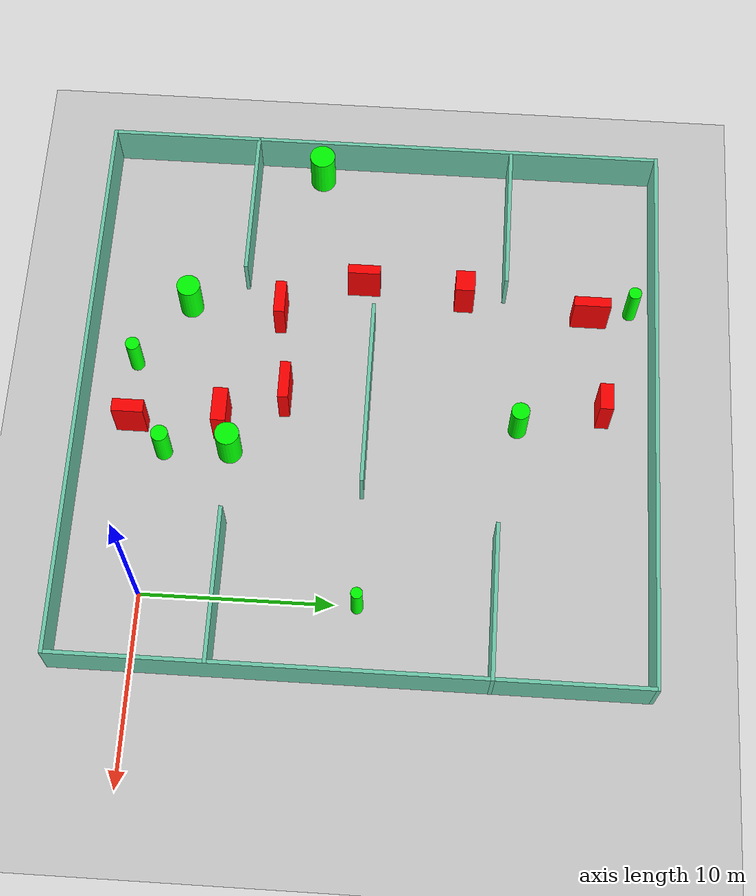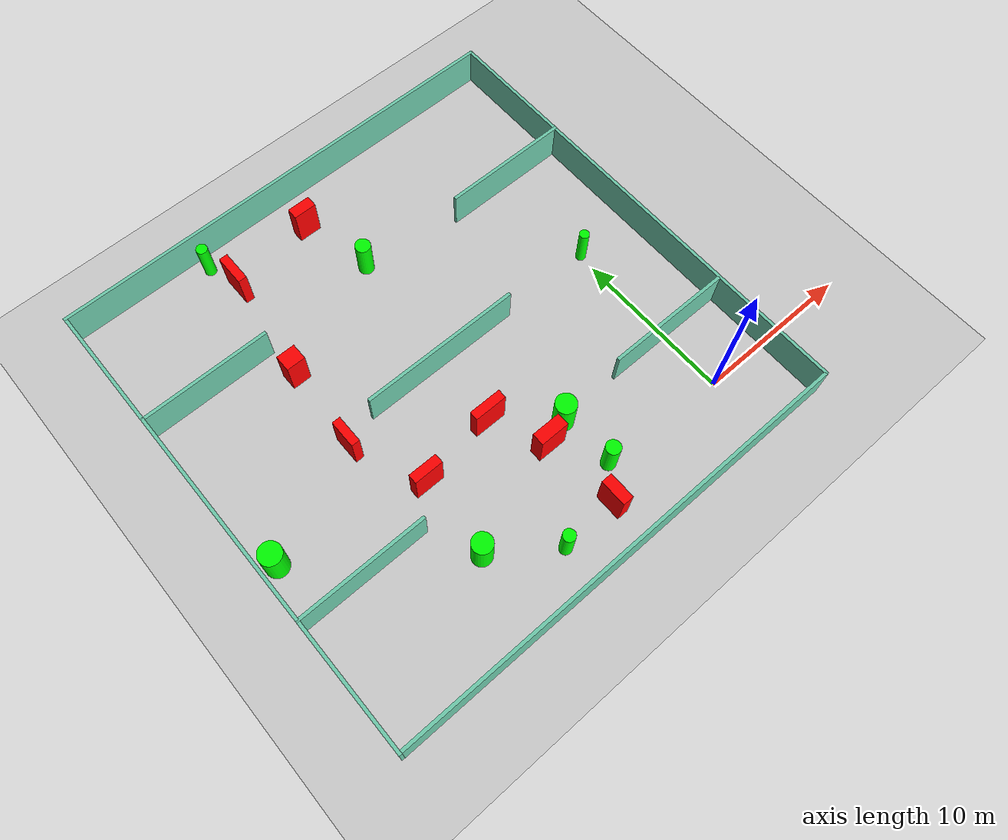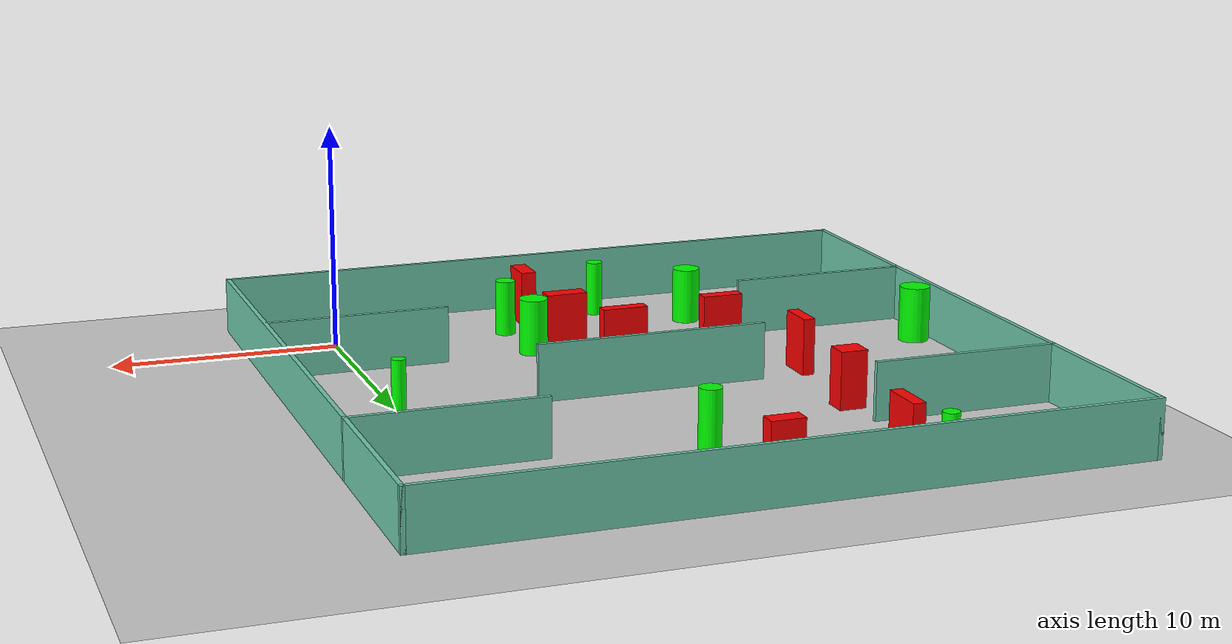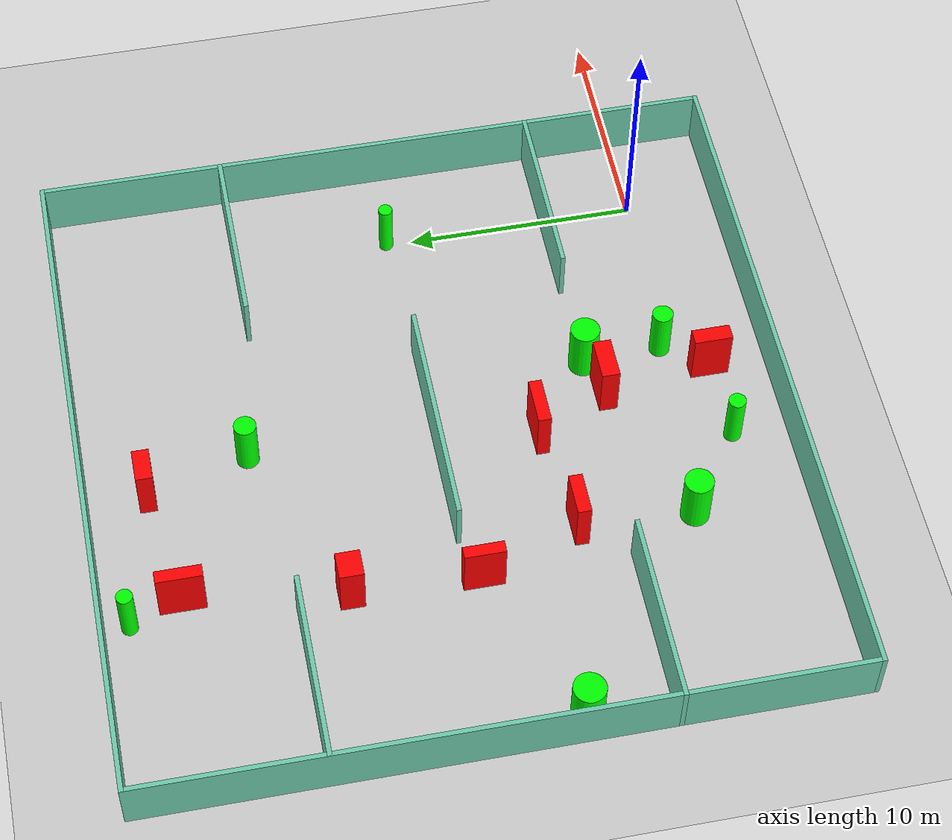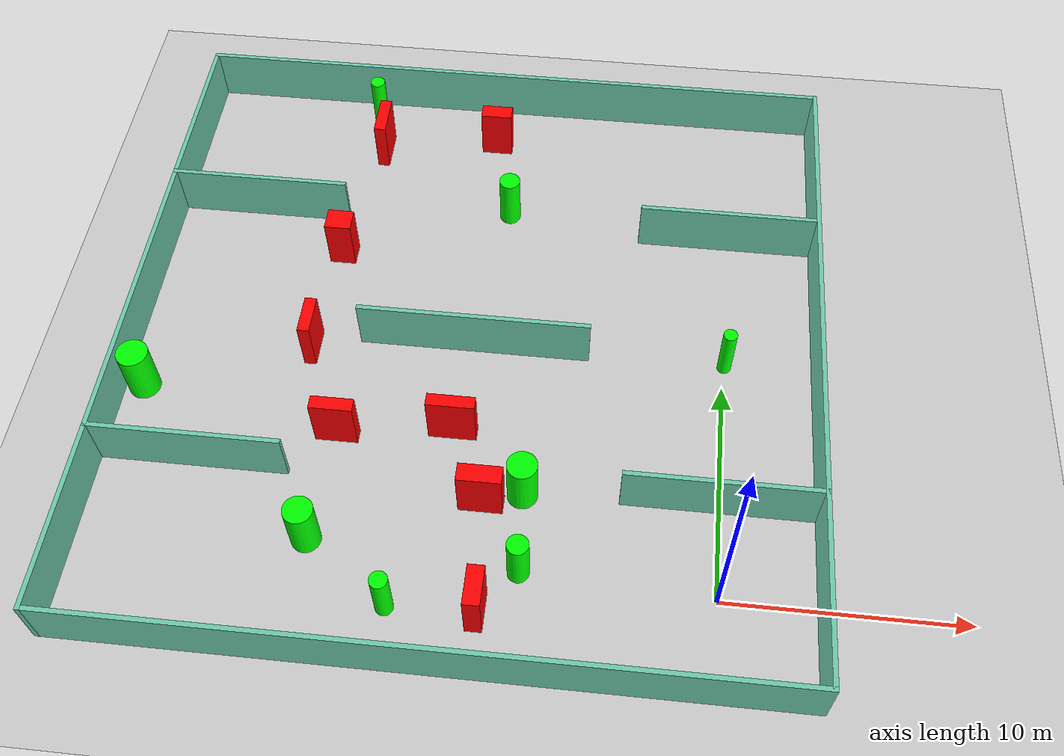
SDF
<sdf version="1.7">
 <world name="default">
  <light name="sun" type="directional">
   <pose>0 0 10 0 -0 0</pose>
   <diffuse>0.8 0.8 0.8 1</diffuse>
   <specular>0.2 0.2 0.2 1</specular>
   <attenuation>
    <range>1000</range>
    <constant>0.9</constant>
    <linear>0.01</linear>
    <quadratic>0.001</quadratic>
   </attenuation>
   <direction>-0.5 0.1 -0.9</direction>
   <spot><inner_angle>0</inner_angle><outer_angle>0</outer_angle><falloff>0</falloff></spot>
  </light>
  <model name="ground_plane">
   <static>1</static>
   <link name="link">
    <collision name="collision">
     <geometry><plane><normal>0 0 1</normal><size>100 100</size></plane></geometry>
     <surface>
      <contact><collide_bitmask>65535</collide_bitmask></contact>
      <friction><ode><mu>100</mu><mu2>50</mu2></ode></friction>
     </surface>
    </collision>
    <visual name="visual">
     <cast_shadows>0</cast_shadows>
     <geometry><plane><normal>0 0 1</normal><size>100 100</size></plane></geometry>
     <material>
      <script><uri>file://media/materials/scripts/gazebo.material</uri><name>Gazebo/Grey</name></script>
     </material>
    </visual>
   </link>
  </model>
  <gravity>0 0 -9.8</gravity>
  <magnetic_field>6e-06 2.3e-05 -4.2e-05</magnetic_field>
  <atmosphere type="adiabatic"/>
  <physics type="ode">
   <max_step_size>0.001</max_step_size>
   <real_time_factor>1</real_time_factor>
   <real_time_update_rate>1000</real_time_update_rate>
  </physics>
  <scene><ambient>0.4 0.4 0.4 1</ambient><background>0.7 0.7 0.7 1</background><shadows>1</shadows></scene>
  <spherical_coordinates>
   <surface_model>EARTH_WGS84</surface_model>
   <latitude_deg>0</latitude_deg>
   <longitude_deg>0</longitude_deg>
   <elevation>0</elevation>
   <heading_deg>0</heading_deg>
  </spherical_coordinates>
  <model name="my_base_walls">
   <link name="Wall_10">
    <collision name="Wall_10_Collision">
     <geometry><box><size>8.2 0.2 2.5</size></box></geometry>
     <pose>0 0 1.25 0 -0 0</pose>
    </collision>
    <visual name="Wall_10_Visual">
     <pose>0 0 1.25 0 -0 0</pose>
     <geometry><box><size>8.2 0.2 2.5</size></box></geometry>
     <material>
      <script><uri>file://media/materials/scripts/gazebo.material</uri><name>Gazebo/Grey</name></script>
      <ambient>0.435294 0.796078 0.67451 1</ambient>
     </material>
     <meta><layer>0</layer></meta>
    </visual>
    <pose>-11 -7 0 0 -0 0</pose>
   </link>
   <link name="Wall_12">
    <collision name="Wall_12_Collision">
     <geometry><box><size>8.2 0.2 2.5</size></box></geometry>
     <pose>0 0 1.25 0 -0 0</pose>
    </collision>
    <visual name="Wall_12_Visual">
     <pose>0 0 1.25 0 -0 0</pose>
     <geometry><box><size>8.2 0.2 2.5</size></box></geometry>
     <material>
      <script><uri>file://media/materials/scripts/gazebo.material</uri><name>Gazebo/Grey</name></script>
      <ambient>0.435294 0.796078 0.67451 1</ambient>
     </material>
     <meta><layer>0</layer></meta>
    </visual>
    <pose>-11 7 0 0 -0 0</pose>
   </link>
   <link name="Wall_14">
    <collision name="Wall_14_Collision">
     <geometry><box><size>8.2 0.2 2.5</size></box></geometry>
     <pose>0 0 1.25 0 -0 0</pose>
    </collision>
    <visual name="Wall_14_Visual">
     <pose>0 0 1.25 0 -0 0</pose>
     <geometry><box><size>8.2 0.2 2.5</size></box></geometry>
     <material>
      <script><uri>file://media/materials/scripts/gazebo.material</uri><name>Gazebo/Grey</name></script>
      <ambient>0.435294 0.796078 0.67451 1</ambient>
     </material>
     <meta><layer>0</layer></meta>
    </visual>
    <pose>11 7 0 0 -0 3.14159</pose>
   </link>
   <link name="Wall_16">
    <collision name="Wall_16_Collision">
     <geometry><box><size>10.2 0.2 2.5</size></box></geometry>
     <pose>0 0 1.25 0 -0 0</pose>
    </collision>
    <visual name="Wall_16_Visual">
     <pose>0 0 1.25 0 -0 0</pose>
     <geometry><box><size>10.2 0.2 2.5</size></box></geometry>
     <material>
      <script><uri>file://media/materials/scripts/gazebo.material</uri><name>Gazebo/Grey</name></script>
      <ambient>0.435294 0.796078 0.67451 1</ambient>
     </material>
     <meta><layer>0</layer></meta>
    </visual>
    <pose>0 0 0 0 -0 3.14159</pose>
   </link>
   <link name="Wall_2">
    <collision name="Wall_2_Collision">
     <geometry><box><size>30.2 0.2 2.5</size></box></geometry>
     <pose>0 0 1.25 0 -0 0</pose>
    </collision>
    <visual name="Wall_2_Visual">
     <pose>0 0 1.25 0 -0 0</pose>
     <geometry><box><size>30.2 0.2 2.5</size></box></geometry>
     <material>
      <script><uri>file://media/materials/scripts/gazebo.material</uri><name>Gazebo/Grey</name></script>
      <ambient>0.435294 0.796078 0.67451 1</ambient>
     </material>
     <meta><layer>0</layer></meta>
    </visual>
    <pose>0 -15 0 0 -0 3.14159</pose>
   </link>
   <link name="Wall_3">
    <collision name="Wall_3_Collision">
     <geometry><box><size>30.2 0.2 2.5</size></box></geometry>
     <pose>0 0 1.25 0 -0 0</pose>
    </collision>
    <visual name="Wall_3_Visual">
     <pose>0 0 1.25 0 -0 0</pose>
     <geometry><box><size>30.2 0.2 2.5</size></box></geometry>
     <material>
      <script><uri>file://media/materials/scripts/gazebo.material</uri><name>Gazebo/Grey</name></script>
      <ambient>0.435294 0.796078 0.67451 1</ambient>
     </material>
     <meta><layer>0</layer></meta>
    </visual>
    <pose>-15 0 0 0 -0 1.5708</pose>
   </link>
   <link name="Wall_4">
    <collision name="Wall_4_Collision">
     <geometry><box><size>30.2 0.2 2.5</size></box></geometry>
     <pose>0 0 1.25 0 -0 0</pose>
    </collision>
    <visual name="Wall_4_Visual">
     <pose>0 0 1.25 0 -0 0</pose>
     <geometry><box><size>30.2 0.2 2.5</size></box></geometry>
     <material>
      <script><uri>file://media/materials/scripts/gazebo.material</uri><name>Gazebo/Grey</name></script>
      <ambient>0.435294 0.796078 0.67451 1</ambient>
     </material>
     <meta><layer>0</layer></meta>
    </visual>
    <pose>0 15 0 0 -0 0</pose>
   </link>
   <link name="Wall_6">
    <collision name="Wall_6_Collision">
     <geometry><box><size>30.2 0.2 2.5</size></box></geometry>
     <pose>0 0 1.25 0 -0 0</pose>
    </collision>
    <visual name="Wall_6_Visual">
     <pose>0 0 1.25 0 -0 0</pose>
     <geometry><box><size>30.2 0.2 2.5</size></box></geometry>
     <material>
      <script><uri>file://media/materials/scripts/gazebo.material</uri><name>Gazebo/Grey</name></script>
      <ambient>0.435294 0.796078 0.67451 1</ambient>
     </material>
     <meta><layer>0</layer></meta>
    </visual>
    <pose>15 0 0 0 -0 1.5708</pose>
   </link>
   <link name="Wall_8">
    <collision name="Wall_8_Collision">
     <geometry><box><size>8.2 0.2 2.5</size></box></geometry>
     <pose>0 0 1.25 0 -0 0</pose>
    </collision>
    <visual name="Wall_8_Visual">
     <pose>0 0 1.25 0 -0 0</pose>
     <geometry><box><size>8.2 0.2 2.5</size></box></geometry>
     <material>
      <script><uri>file://media/materials/scripts/gazebo.material</uri><name>Gazebo/Grey</name></script>
      <ambient>0.435294 0.796078 0.67451 1</ambient>
     </material>
     <meta><layer>0</layer></meta>
    </visual>
    <pose>11 -7 0 0 -0 3.14159</pose>
   </link>
   <static>1</static>
   <pose>-11 11 0 0 -0 0</pose>
  </model>
  <model name="cylinder1">
   <static>1</static>
   <link name="link">
    <inertial>
     <mass>1</mass>
     <inertia><ixx>0.5</ixx><ixy>0</ixy><ixz>0</ixz><iyy>0.5</iyy><iyz>0</iyz><izz>1</izz></inertia>
    </inertial>
    <collision name="collision">
     <geometry><cylinder><radius>0.4793642138937728</radius><length>2.5</length></cylinder></geometry>
    </collision>
    <visual name="visual">
     <geometry><cylinder><radius>0.4793642138937728</radius><length>2.5</length></cylinder></geometry>
     <material>
      <ambient>0 1 0 1</ambient>
      <diffuse>0 1 0 1</diffuse>
      <specular>0.1 0.1 0.1 1</specular>
      <emissive>0 0 0 0</emissive>
     </material>
    </visual>
   </link>
   <pose>-10.302719754822217 18.967758580508328 1.25 0 0 0</pose>
  </model>
  <model name="cylinder2">
   <static>1</static>
   <link name="link">
    <inertial>
     <mass>1</mass>
     <inertia><ixx>0.5</ixx><ixy>0</ixy><ixz>0</ixz><iyy>0.5</iyy><iyz>0</iyz><izz>1</izz></inertia>
    </inertial>
    <collision name="collision">
     <geometry><cylinder><radius>0.30484520756621214</radius><length>2.5</length></cylinder></geometry>
    </collision>
    <visual name="visual">
     <geometry><cylinder><radius>0.30484520756621214</radius><length>2.5</length></cylinder></geometry>
     <material>
      <ambient>0 1 0 1</ambient>
      <diffuse>0 1 0 1</diffuse>
      <specular>0.1 0.1 0.1 1</specular>
      <emissive>0 0 0 0</emissive>
     </material>
    </visual>
   </link>
   <pose>0.07474295140703191 11.147130117623398 1.25 0 0 0</pose>
  </model>
  <model name="cylinder3">
   <static>1</static>
   <link name="link">
    <inertial>
     <mass>1</mass>
     <inertia><ixx>0.5</ixx><ixy>0</ixy><ixz>0</ixz><iyy>0.5</iyy><iyz>0</iyz><izz>1</izz></inertia>
    </inertial>
    <collision name="collision">
     <geometry><cylinder><radius>0.3475603524035377</radius><length>2.5</length></cylinder></geometry>
    </collision>
    <visual name="visual">
     <geometry><cylinder><radius>0.3475603524035377</radius><length>2.5</length></cylinder></geometry>
     <material>
      <ambient>0 1 0 1</ambient>
      <diffuse>0 1 0 1</diffuse>
      <specular>0.1 0.1 0.1 1</specular>
      <emissive>0 0 0 0</emissive>
     </material>
    </visual>
   </link>
   <pose>-17.583584768123174 24.872918279352163 1.25 0 0 0</pose>
  </model>
  <model name="cylinder4">
   <static>1</static>
   <link name="link">
    <inertial>
     <mass>1</mass>
     <inertia><ixx>0.5</ixx><ixy>0</ixy><ixz>0</ixz><iyy>0.5</iyy><iyz>0</iyz><izz>1</izz></inertia>
    </inertial>
    <collision name="collision">
     <geometry><cylinder><radius>0.6189385274278122</radius><length>2.5</length></cylinder></geometry>
    </collision>
    <visual name="visual">
     <geometry><cylinder><radius>0.6189385274278122</radius><length>2.5</length></cylinder></geometry>
     <material>
      <ambient>0 1 0 1</ambient>
      <diffuse>0 1 0 1</diffuse>
      <specular>0.1 0.1 0.1 1</specular>
      <emissive>0 0 0 0</emissive>
     </material>
    </visual>
   </link>
   <pose>-16.55092779442358 1.035174697467756 1.25 0 0 0</pose>
  </model>
  <model name="cylinder5">
   <static>1</static>
   <link name="link">
    <inertial>
     <mass>1</mass>
     <inertia><ixx>0.5</ixx><ixy>0</ixy><ixz>0</ixz><iyy>0.5</iyy><iyz>0</iyz><izz>1</izz></inertia>
    </inertial>
    <collision name="collision">
     <geometry><cylinder><radius>0.44873501811509264</radius><length>2.5</length></cylinder></geometry>
    </collision>
    <visual name="visual">
     <geometry><cylinder><radius>0.44873501811509264</radius><length>2.5</length></cylinder></geometry>
     <material>
      <ambient>0 1 0 1</ambient>
      <diffuse>0 1 0 1</diffuse>
      <specular>0.1 0.1 0.1 1</specular>
      <emissive>0 0 0 0</emissive>
     </material>
    </visual>
   </link>
   <pose>-7.882805156413655 0.44525192616140874 1.25 0 0 0</pose>
  </model>
  <model name="cylinder6">
   <static>1</static>
   <link name="link">
    <inertial>
     <mass>1</mass>
     <inertia><ixx>0.5</ixx><ixy>0</ixy><ixz>0</ixz><iyy>0.5</iyy><iyz>0</iyz><izz>1</izz></inertia>
    </inertial>
    <collision name="collision">
     <geometry><cylinder><radius>0.6838596003229882</radius><length>2.5</length></cylinder></geometry>
    </collision>
    <visual name="visual">
     <geometry><cylinder><radius>0.6838596003229882</radius><length>2.5</length></cylinder></geometry>
     <material>
      <ambient>0 1 0 1</ambient>
      <diffuse>0 1 0 1</diffuse>
      <specular>0.1 0.1 0.1 1</specular>
      <emissive>0 0 0 0</emissive>
     </material>
    </visual>
   </link>
   <pose>-25.074883487044442 7.602264228507591 1.25 0 0 0</pose>
  </model>
  <model name="cylinder7">
   <static>1</static>
   <link name="link">
    <inertial>
     <mass>1</mass>
     <inertia><ixx>0.5</ixx><ixy>0</ixy><ixz>0</ixz><iyy>0.5</iyy><iyz>0</iyz><izz>1</izz></inertia>
    </inertial>
    <collision name="collision">
     <geometry><cylinder><radius>0.6387787407698373</radius><length>2.5</length></cylinder></geometry>
    </collision>
    <visual name="visual">
     <geometry><cylinder><radius>0.6387787407698373</radius><length>2.5</length></cylinder></geometry>
     <material>
      <ambient>0 1 0 1</ambient>
      <diffuse>0 1 0 1</diffuse>
      <specular>0.1 0.1 0.1 1</specular>
      <emissive>0 0 0 0</emissive>
     </material>
    </visual>
   </link>
   <pose>-8.086730606330178 3.912345864319011 1.25 0 0 0</pose>
  </model>
  <model name="cylinder8">
   <static>1</static>
   <link name="link">
    <inertial>
     <mass>1</mass>
     <inertia><ixx>0.5</ixx><ixy>0</ixy><ixz>0</ixz><iyy>0.5</iyy><iyz>0</iyz><izz>1</izz></inertia>
    </inertial>
    <collision name="collision">
     <geometry><cylinder><radius>0.37384447572340374</radius><length>2.5</length></cylinder></geometry>
    </collision>
    <visual name="visual">
     <geometry><cylinder><radius>0.37384447572340374</radius><length>2.5</length></cylinder></geometry>
     <material>
      <ambient>0 1 0 1</ambient>
      <diffuse>0 1 0 1</diffuse>
      <specular>0.1 0.1 0.1 1</specular>
      <emissive>0 0 0 0</emissive>
     </material>
    </visual>
   </link>
   <pose>-12.922586536852902 -1.5351569952623767 1.25 0 0 0</pose>
  </model>
  <model name="box1">
   <static>1</static>
   <link name="link">
    <inertial>
     <mass>1</mass>
     <inertia><ixx>0.083</ixx><ixy>0</ixy><ixz>0</ixz><iyy>0.083</iyy><iyz>0</iyz><izz>0.083</izz></inertia>
    </inertial>
    <collision name="collision">
     <geometry><box><size>0.6921415192883948 1.6582643054349588 2.5</size></box></geometry>
    </collision>
    <visual name="visual">
     <geometry><box><size>0.6921415192883948 1.6582643054349588 2.5</size></box></geometry>
     <material>
      <ambient>1 0 0 1</ambient>
      <diffuse>1 0 0 1</diffuse>
      <specular>0.1 0.1 0.1 1</specular>
      <emissive>0 0 0 0</emissive>
     </material>
    </visual>
    <sensor name="my_contact" type="contact">
     <contact><collision>box_collision</collision><topic>__default_topic__</topic></contact>
    </sensor>
   </link>
   <pose>-9.347071740283894 -1.365352158870952 1.25 0 0 0</pose>
  </model>
  <model name="box2">
   <static>1</static>
   <link name="link">
    <inertial>
     <mass>1</mass>
     <inertia><ixx>0.083</ixx><ixy>0</ixy><ixz>0</ixz><iyy>0.083</iyy><iyz>0</iyz><izz>0.083</izz></inertia>
    </inertial>
    <collision name="collision">
     <geometry><box><size>1.8457633564144769 0.7779499684961939 2.5</size></box></geometry>
    </collision>
    <visual name="visual">
     <geometry><box><size>1.8457633564144769 0.7779499684961939 2.5</size></box></geometry>
     <material>
      <ambient>1 0 0 1</ambient>
      <diffuse>1 0 0 1</diffuse>
      <specular>0.1 0.1 0.1 1</specular>
      <emissive>0 0 0 0</emissive>
     </material>
    </visual>
    <sensor name="my_contact" type="contact">
     <contact><collision>box_collision</collision><topic>__default_topic__</topic></contact>
    </sensor>
   </link>
   <pose>-9.732831648376724 3.366554121484583 1.25 0 0 0</pose>
  </model>
  <model name="box3">
   <static>1</static>
   <link name="link">
    <inertial>
     <mass>1</mass>
     <inertia><ixx>0.083</ixx><ixy>0</ixy><ixz>0</ixz><iyy>0.083</iyy><iyz>0</iyz><izz>0.083</izz></inertia>
    </inertial>
    <collision name="collision">
     <geometry><box><size>1.4524534602550454 0.7238951091567676 2.5</size></box></geometry>
    </collision>
    <visual name="visual">
     <geometry><box><size>1.4524534602550454 0.7238951091567676 2.5</size></box></geometry>
     <material>
      <ambient>1 0 0 1</ambient>
      <diffuse>1 0 0 1</diffuse>
      <specular>0.1 0.1 0.1 1</specular>
      <emissive>0 0 0 0</emissive>
     </material>
    </visual>
    <sensor name="my_contact" type="contact">
     <contact><collision>box_collision</collision><topic>__default_topic__</topic></contact>
    </sensor>
   </link>
   <pose>-11.43305638729274 23.41622092064825 1.25 0 0 0</pose>
  </model>
  <model name="box4">
   <static>1</static>
   <link name="link">
    <inertial>
     <mass>1</mass>
     <inertia><ixx>0.083</ixx><ixy>0</ixy><ixz>0</ixz><iyy>0.083</iyy><iyz>0</iyz><izz>0.083</izz></inertia>
    </inertial>
    <collision name="collision">
     <geometry><box><size>2.052367714447071 0.56091479213733 2.5</size></box></geometry>
    </collision>
    <visual name="visual">
     <geometry><box><size>2.052367714447071 0.56091479213733 2.5</size></box></geometry>
     <material>
      <ambient>1 0 0 1</ambient>
      <diffuse>1 0 0 1</diffuse>
      <specular>0.1 0.1 0.1 1</specular>
      <emissive>0 0 0 0</emissive>
     </material>
    </visual>
    <sensor name="my_contact" type="contact">
     <contact><collision>box_collision</collision><topic>__default_topic__</topic></contact>
    </sensor>
   </link>
   <pose>-11.350051618458455 6.606869950468926 1.25 0 0 0</pose>
  </model>
  <model name="box5">
   <static>1</static>
   <link name="link">
    <inertial>
     <mass>1</mass>
     <inertia><ixx>0.083</ixx><ixy>0</ixy><ixz>0</ixz><iyy>0.083</iyy><iyz>0</iyz><izz>0.083</izz></inertia>
    </inertial>
    <collision name="collision">
     <geometry><box><size>0.522256006603128 1.7463956198463362 2.5</size></box></geometry>
    </collision>
    <visual name="visual">
     <geometry><box><size>0.522256006603128 1.7463956198463362 2.5</size></box></geometry>
     <material>
      <ambient>1 0 0 1</ambient>
      <diffuse>1 0 0 1</diffuse>
      <specular>0.1 0.1 0.1 1</specular>
      <emissive>0 0 0 0</emissive>
     </material>
    </visual>
    <sensor name="my_contact" type="contact">
     <contact><collision>box_collision</collision><topic>__default_topic__</topic></contact>
    </sensor>
   </link>
   <pose>-18.131356791322574 10.36406768180849 1.25 0 0 0</pose>
  </model>
  <model name="box6">
   <static>1</static>
   <link name="link">
    <inertial>
     <mass>1</mass>
     <inertia><ixx>0.083</ixx><ixy>0</ixy><ixz>0</ixz><iyy>0.083</iyy><iyz>0</iyz><izz>0.083</izz></inertia>
    </inertial>
    <collision name="collision">
     <geometry><box><size>1.1803029977349289 1.032267851965082 2.5</size></box></geometry>
    </collision>
    <visual name="visual">
     <geometry><box><size>1.1803029977349289 1.032267851965082 2.5</size></box></geometry>
     <material>
      <ambient>1 0 0 1</ambient>
      <diffuse>1 0 0 1</diffuse>
      <specular>0.1 0.1 0.1 1</specular>
      <emissive>0 0 0 0</emissive>
     </material>
    </visual>
    <sensor name="my_contact" type="contact">
     <contact><collision>box_collision</collision><topic>__default_topic__</topic></contact>
    </sensor>
   </link>
   <pose>-17.77861731720411 15.821197862595696 1.25 0 0 0</pose>
  </model>
  <model name="box7">
   <static>1</static>
   <link name="link">
    <inertial>
     <mass>1</mass>
     <inertia><ixx>0.083</ixx><ixy>0</ixy><ixz>0</ixz><iyy>0.083</iyy><iyz>0</iyz><izz>0.083</izz></inertia>
    </inertial>
    <collision name="collision">
     <geometry><box><size>0.545451834952875 1.96025804210723 2.5</size></box></geometry>
    </collision>
    <visual name="visual">
     <geometry><box><size>0.545451834952875 1.96025804210723 2.5</size></box></geometry>
     <material>
      <ambient>1 0 0 1</ambient>
      <diffuse>1 0 0 1</diffuse>
      <specular>0.1 0.1 0.1 1</specular>
      <emissive>0 0 0 0</emissive>
     </material>
    </visual>
    <sensor name="my_contact" type="contact">
     <contact><collision>box_collision</collision><topic>__default_topic__</topic></contact>
    </sensor>
   </link>
   <pose>-16.934073432617488 22.626933290130196 1.25 0 0 0</pose>
  </model>
  <model name="box8">
   <static>1</static>
   <link name="link">
    <inertial>
     <mass>1</mass>
     <inertia><ixx>0.083</ixx><ixy>0</ixy><ixz>0</ixz><iyy>0.083</iyy><iyz>0</iyz><izz>0.083</izz></inertia>
    </inertial>
    <collision name="collision">
     <geometry><box><size>1.8254884763802526 0.5878336891327838 2.5</size></box></geometry>
    </collision>
    <visual name="visual">
     <geometry><box><size>1.8254884763802526 0.5878336891327838 2.5</size></box></geometry>
     <material>
      <ambient>1 0 0 1</ambient>
      <diffuse>1 0 0 1</diffuse>
      <specular>0.1 0.1 0.1 1</specular>
      <emissive>0 0 0 0</emissive>
     </material>
    </visual>
    <sensor name="my_contact" type="contact">
     <contact><collision>box_collision</collision><topic>__default_topic__</topic></contact>
    </sensor>
   </link>
   <pose>-16.214355097524695 5.982671563946978 1.25 0 0 0</pose>
  </model>
 </world>
</sdf>
